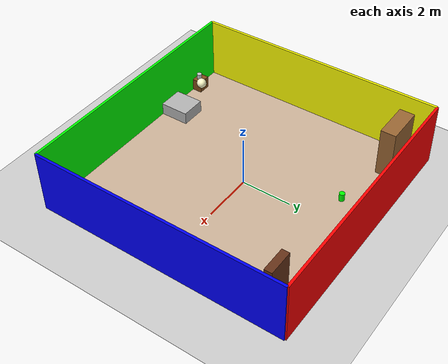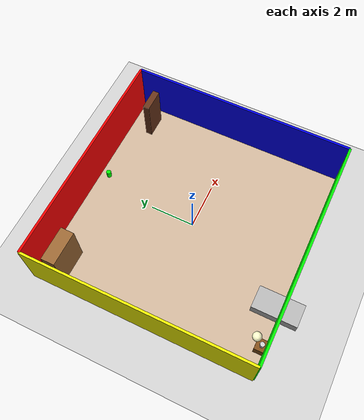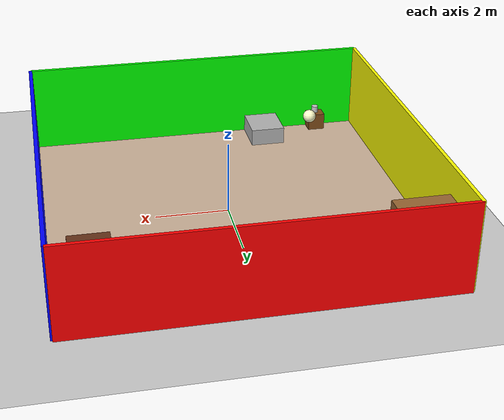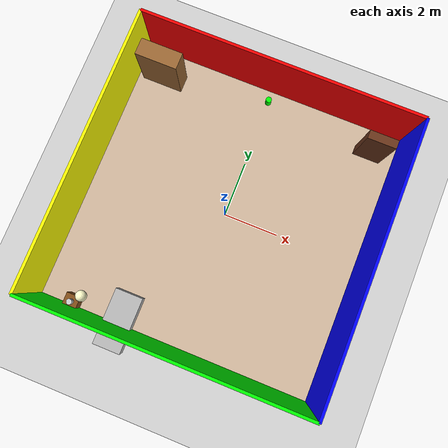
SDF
<sdf version="1.6">
 <world name="default">
  <include><uri>model://sun</uri></include>
  <include><uri>model://ground_plane</uri></include>
  <model name="wall_north">
   <static>true</static>
   <link name="link">
    <collision name="collision"><geometry><box><size>10 0.1 2.5</size></box></geometry></collision>
    <visual name="visual">
     <geometry><box><size>10 0.1 2.5</size></box></geometry>
     <material><ambient>1 0 0 1</ambient><diffuse>1 0 0 1</diffuse></material>
    </visual>
   </link>
   <pose>0 5 1.25 0 0 0</pose>
  </model>
  <model name="wall_south">
   <static>true</static>
   <link name="link">
    <collision name="collision"><geometry><box><size>10 0.1 2.5</size></box></geometry></collision>
    <visual name="visual">
     <geometry><box><size>10 0.1 2.5</size></box></geometry>
     <material><ambient>0 1 0 1</ambient><diffuse>0 1 0 1</diffuse></material>
    </visual>
   </link>
   <pose>0 -5 1.25 0 0 0</pose>
  </model>
  <model name="wall_east">
   <static>true</static>
   <link name="link">
    <collision name="collision"><geometry><box><size>0.1 10 2.5</size></box></geometry></collision>
    <visual name="visual">
     <geometry><box><size>0.1 10 2.5</size></box></geometry>
     <material><ambient>0 0 1 1</ambient><diffuse>0 0 1 1</diffuse></material>
    </visual>
   </link>
   <pose>5 0 1.25 0 0 0</pose>
  </model>
  <model name="wall_west">
   <static>true</static>
   <link name="link">
    <collision name="collision"><geometry><box><size>0.1 10 2.5</size></box></geometry></collision>
    <visual name="visual">
     <geometry><box><size>0.1 10 2.5</size></box></geometry>
     <material><ambient>1 1 0 1</ambient><diffuse>1 1 0 1</diffuse></material>
    </visual>
   </link>
   <pose>-5 0 1.25 0 0 0</pose>
  </model>
  <include><uri>model://bed</uri><pose>-2 -4.8 0.25 0 0 1.5708</pose></include>
  <model name="nightstand">
   <static>true</static>
   <link name="link">
    <collision name="collision"><geometry><box><size>0.5 0.5 0.5</size></box></geometry></collision>
    <visual name="visual">
     <geometry><box><size>0.5 0.5 0.5</size></box></geometry>
     <material><ambient>0.5 0.3 0.1 1</ambient><diffuse>0.5 0.3 0.1 1</diffuse></material>
    </visual>
   </link>
   <pose>-3.75 -4.8 0.25 0 0 0</pose>
  </model>
  <model name="lamp">
   <static>true</static>
   <link name="link">
    <collision name="collision">
     <geometry><cylinder><radius>0.1</radius><length>0.3</length></cylinder></geometry>
    </collision>
    <visual name="visual">
     <geometry><cylinder><radius>0.1</radius><length>0.3</length></cylinder></geometry>
     <material><ambient>0.8 0.8 0.8 1</ambient><diffuse>0.8 0.8 0.8 1</diffuse></material>
    </visual>
   </link>
   <pose>-3.75 -4.8 0.55 0 0 0</pose>
  </model>
  <model name="rug">
   <static>true</static>
   <link name="link">
    <collision name="collision"><geometry><box><size>10 10 0.01</size></box></geometry></collision>
    <visual name="visual">
     <geometry><box><size>10 10 0.01</size></box></geometry>
     <material><ambient>0.8 0.7 0.6 1</ambient><diffuse>0.8 0.7 0.6 1</diffuse></material>
    </visual>
   </link>
  </model>
  <model name="bookshelf">
   <static>true</static>
   <link name="link">
    <collision name="collision"><geometry><box><size>1 0.3 2</size></box></geometry></collision>
    <visual name="visual">
     <geometry><box><size>1 0.3 2</size></box></geometry>
     <material><ambient>0.4 0.2 0.1 1</ambient><diffuse>0.4 0.2 0.1 1</diffuse></material>
    </visual>
   </link>
   <pose>4 4 1 0 0 0</pose>
  </model>
  <model name="wardrobe">
   <static>true</static>
   <link name="link">
    <collision name="collision"><geometry><box><size>1.5 0.6 2</size></box></geometry></collision>
    <visual name="visual">
     <geometry><box><size>1.5 0.6 2</size></box></geometry>
     <material><ambient>0.6 0.4 0.2 1</ambient><diffuse>0.6 0.4 0.2 1</diffuse></material>
    </visual>
   </link>
   <pose>-4 4 1 0 0 0</pose>
  </model>
  <model name="bedside_lamp">
   <static>true</static>
   <link name="link">
    <collision name="collision"><geometry><sphere><radius>0.2</radius></sphere></geometry></collision>
    <visual name="visual">
     <geometry><sphere><radius>0.2</radius></sphere></geometry>
     <material><ambient>1 1 0.8 1</ambient><diffuse>1 1 0.8 1</diffuse></material>
    </visual>
   </link>
   <pose>-3.5 -4.5 0.5 0 0 0</pose>
  </model>
  <model name="lidar_sensor">
   <static>true</static>
   <link name="link">
    <visual name="visual">
     <geometry><cylinder><radius>0.1</radius><length>0.3</length></cylinder></geometry>
     <material><ambient>0 1 0 1</ambient><diffuse>0 1 0 1</diffuse></material>
    </visual>
    <collision name="collision">
     <geometry><cylinder><radius>0.1</radius><length>0.3</length></cylinder></geometry>
    </collision>
    <sensor name="lidar" type="ray">
     <pose>0 0 0.15 0 0 0</pose>
     <ray>
      <scan>
       <horizontal>
        <samples>640</samples>
        <resolution>1</resolution>
        <min_angle>-3.14</min_angle>
        <max_angle>3.14</max_angle>
       </horizontal>
       <vertical>
        <samples>1</samples>
        <resolution>1</resolution>
        <min_angle>0</min_angle>
        <max_angle>0</max_angle>
       </vertical>
      </scan>
      <range><min>5.0</min><max>10.0</max><resolution>0.01</resolution></range>
      <noise><type>gaussian</type><mean>0.0</mean><stddev>0.01</stddev></noise>
     </ray>
     <plugin name="gazebo_ros_laser_controller" filename="libgazebo_ros_laser.so">
      <topicName>/scan</topicName>
      <frameName>lidar_link</frameName>
     </plugin>
    </sensor>
   </link>
   <pose>0 4 1.5 0 0 0</pose>
  </model>
 </world>
</sdf>

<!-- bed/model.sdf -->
<sdf version="1.6">
  <model name="bed">
    <static>true</static>
    <link name="link">
      <visual name="visual">
        <geometry>
          <box>
            <size>2 1 0.5</size>
          </box>
        </geometry>
        <material>
          <ambient>1 1 1 1</ambient>
          <diffuse>0.7 0.7 0.7 1</diffuse>
        </material>
      </visual>
    </link>
  </model>
</sdf>
